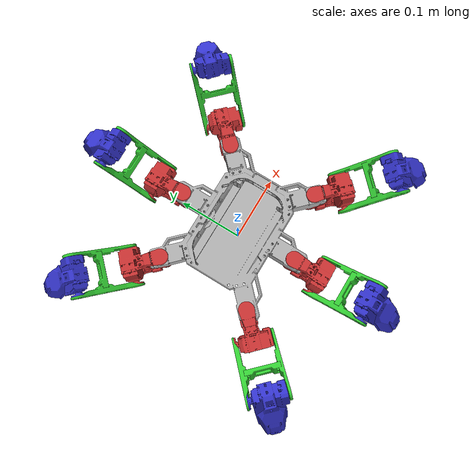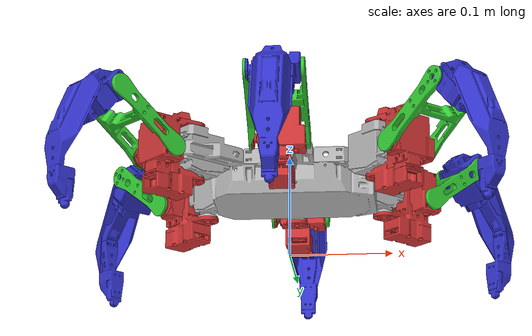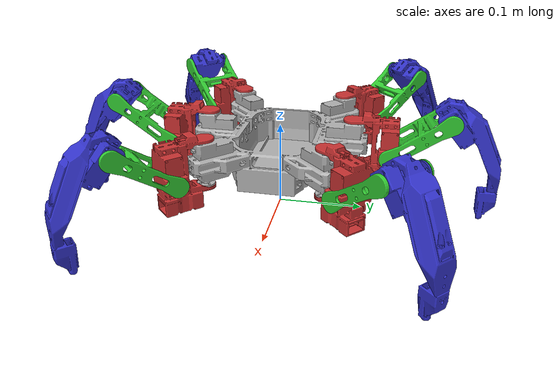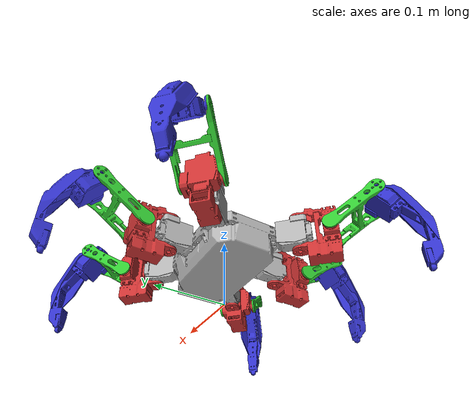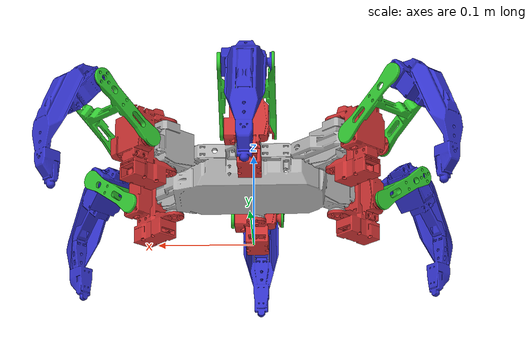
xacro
<?xml version="1.0" ?>
<robot name="diddler" xmlns:xacro="http://www.ros.org/wiki/xacro">

  <!-- Measurements (meters) -->
  <xacro:property name="coxa_len" value="0.043"/>
  <xacro:property name="femur_len" value="0.060"/>
  <xacro:property name="tibia_len" value="0.104"/>
  <xacro:property name="L1_TO_R1" value="0.126"/>
  <xacro:property name="L1_TO_L3" value="0.167"/>
  <xacro:property name="L2_TO_R2" value="0.163"/>
  <xacro:property name="LEG_CONNECTION_Z" value="-0.007"/>

  <!-- Materials -->
  <material name="silver"><color rgba="0.7 0.7 0.7 1.0"/></material>
  <material name="red"><color rgba="0.8 0.2 0.2 1.0"/></material>
  <material name="green"><color rgba="0.2 0.8 0.2 1.0"/></material>
  <material name="blue"><color rgba="0.2 0.2 0.8 1.0"/></material>

  <!-- ==================== BASE ==================== -->
  <link name="base_link">
    <inertial>
      <origin xyz="0.003 0.0 0.082" rpy="0 0 0"/>
      <mass value="2.76"/>
      <inertia ixx="0.0104" iyy="0.0114" izz="0.0208" ixy="0" iyz="0" ixz="0"/>
    </inertial>
    <visual>
      <origin xyz="0 0 0" rpy="0 0 0"/>
      <geometry>
        <mesh filename="file:///home/daksh/spooder_ws/diddler/meshes/base_link.stl" scale="0.001 0.001 0.001"/>
      </geometry>
      <material name="silver"/>
    </visual>
    <collision>
      <geometry><box size="${L1_TO_L3} ${L2_TO_R2} 0.05"/></geometry>
    </collision>
  </link>

  <!-- ==================== LEG L1 (Left Front) ==================== -->
  <link name="cox_L1_1">
    <inertial>
      <origin xyz="-0.026 -0.027 0.022" rpy="0 0 0"/>
      <mass value="0.434"/>
      <inertia ixx="0.000242" iyy="0.00024" izz="0.000124" ixy="-1.3e-05" iyz="1e-05" ixz="1.2e-05"/>
    </inertial>
    <visual>
      <origin xyz="0.087783 0.066055 -0.0596" rpy="0 0 0"/>
      <geometry>
        <mesh filename="file:///home/daksh/spooder_ws/diddler/meshes/cox_L1_1.stl" scale="0.001 0.001 0.001"/>
      </geometry>
      <material name="red"/>
    </visual>
    <collision>
      <origin xyz="${coxa_len/2} 0 0"/>
      <geometry><box size="${coxa_len} 0.03 0.03"/></geometry>
    </collision>
  </link>

  <link name="femur_L1_1">
    <inertial>
      <origin xyz="-0.006 -0.042 0.024" rpy="0 0 0"/>
      <mass value="0.132"/>
      <inertia ixx="9.4e-05" iyy="9.2e-05" izz="0.000131" ixy="1.3e-05" iyz="2.4e-05" ixz="2.4e-05"/>
    </inertial>
    <visual>
      <origin xyz="0.136785 0.078571 -0.0781" rpy="0 0 0"/>
      <geometry>
        <mesh filename="file:///home/daksh/spooder_ws/diddler/meshes/femur_L1_1.stl" scale="0.001 0.001 0.001"/>
      </geometry>
      <material name="green"/>
    </visual>
    <collision>
      <origin xyz="${femur_len/2} 0 0" rpy="0 1.5708 0"/>
      <geometry><cylinder radius="0.015" length="${femur_len}"/></geometry>
    </collision>
  </link>

  <link name="tibia_L1_1">
    <inertial>
      <origin xyz="0.004 -0.033 -0.024" rpy="0 0 0"/>
      <mass value="0.495"/>
      <inertia ixx="0.000705" iyy="0.000714" izz="0.000267" ixy="-8.2e-05" iyz="-0.000196" ixz="-0.000204"/>
    </inertial>
    <visual>
      <origin xyz="0.183123 0.124909 -0.123986" rpy="0 0 0"/>
      <geometry>
        <mesh filename="file:///home/daksh/spooder_ws/diddler/meshes/tibia_L1_1.stl" scale="0.001 0.001 0.001"/>
      </geometry>
      <material name="blue"/>
    </visual>
    <collision>
      <origin xyz="0.183123 0.124909 -0.123986" rpy="0 0 0"/>
      <geometry>
        <mesh filename="file:///home/daksh/spooder_ws/diddler/meshes/tibia_L1_1.stl" scale="0.001 0.001 0.001"/>
      </geometry>
    </collision>
  </link>

  <!-- ==================== LEG L2 (Left Middle) ==================== -->
  <link name="cox_L2_1">
    <inertial>
      <origin xyz="0.0005 -0.037 0.022" rpy="0 0 0"/>
      <mass value="0.434"/>
      <inertia ixx="0.000254" iyy="0.000228" izz="0.000124" ixy="1e-06" iyz="1.6e-05" ixz="1e-06"/>
    </inertial>
    <visual>
      <origin xyz="-0.0002 0.0855 -0.0596" rpy="0 0 0"/>
      <geometry>
        <mesh filename="file:///home/daksh/spooder_ws/diddler/meshes/cox_L2_1.stl" scale="0.001 0.001 0.001"/>
      </geometry>
      <material name="red"/>
    </visual>
    <collision>
      <origin xyz="${coxa_len/2} 0 0"/>
      <geometry><box size="${coxa_len} 0.03 0.03"/></geometry>
    </collision>
  </link>

  <link name="femur_L2_1">
    <inertial>
      <origin xyz="0.025 -0.034 0.024" rpy="0 0 0"/>
      <mass value="0.132"/>
      <inertia ixx="8e-05" iyy="0.000106" izz="0.000131" ixy="1e-06" iyz="3.4e-05" ixz="-1e-06"/>
    </inertial>
    <visual>
      <origin xyz="0.0256 0.129 -0.0781" rpy="0 0 0"/>
      <geometry>
        <mesh filename="file:///home/daksh/spooder_ws/diddler/meshes/femur_L2_1.stl" scale="0.001 0.001 0.001"/>
      </geometry>
      <material name="green"/>
    </visual>
    <collision>
      <origin xyz="${femur_len/2} 0 0" rpy="0 1.5708 0"/>
      <geometry><cylinder radius="0.015" length="${femur_len}"/></geometry>
    </collision>
  </link>

  <link name="tibia_L2_1">
    <inertial>
      <origin xyz="0.026 -0.020 -0.024" rpy="0 0 0"/>
      <mass value="0.495"/>
      <inertia ixx="0.000791" iyy="0.000628" izz="0.000267" ixy="-5e-06" iyz="-0.000283" ixz="-6e-06"/>
    </inertial>
    <visual>
      <origin xyz="0.0256 0.194532 -0.123986" rpy="0 0 0"/>
      <geometry>
        <mesh filename="file:///home/daksh/spooder_ws/diddler/meshes/tibia_L2_1.stl" scale="0.001 0.001 0.001"/>
      </geometry>
      <material name="blue"/>
    </visual>
    <collision>
      <origin xyz="0.0256 0.194532 -0.123986" rpy="0 0 0"/>
      <geometry>
        <mesh filename="file:///home/daksh/spooder_ws/diddler/meshes/tibia_L2_1.stl" scale="0.001 0.001 0.001"/>
      </geometry>
    </collision>
  </link>

  <!-- ==================== LEG L3 (Left Rear) ==================== -->
  <link name="cox_L3_1">
    <inertial>
      <origin xyz="0.027 -0.026 0.022" rpy="0 0 0"/>
      <mass value="0.434"/>
      <inertia ixx="0.00024" iyy="0.000242" izz="0.000124" ixy="1.3e-05" iyz="1.2e-05" ixz="-1e-05"/>
    </inertial>
    <visual>
      <origin xyz="-0.088556 0.065282 -0.0596" rpy="0 0 0"/>
      <geometry>
        <mesh filename="file:///home/daksh/spooder_ws/diddler/meshes/cox_L3_1.stl" scale="0.001 0.001 0.001"/>
      </geometry>
      <material name="red"/>
    </visual>
    <collision>
      <origin xyz="${coxa_len/2} 0 0"/>
      <geometry><box size="${coxa_len} 0.03 0.03"/></geometry>
    </collision>
  </link>

  <link name="femur_L3_1">
    <inertial>
      <origin xyz="0.042 -0.006 0.024" rpy="0 0 0"/>
      <mass value="0.132"/>
      <inertia ixx="9.2e-05" iyy="9.4e-05" izz="0.000131" ixy="-1.3e-05" iyz="2.4e-05" ixz="-2.4e-05"/>
    </inertial>
    <visual>
      <origin xyz="-0.101072 0.114284 -0.0781" rpy="0 0 0"/>
      <geometry>
        <mesh filename="file:///home/daksh/spooder_ws/diddler/meshes/femur_L3_1.stl" scale="0.001 0.001 0.001"/>
      </geometry>
      <material name="green"/>
    </visual>
    <collision>
      <origin xyz="${femur_len/2} 0 0" rpy="0 1.5708 0"/>
      <geometry><cylinder radius="0.015" length="${femur_len}"/></geometry>
    </collision>
  </link>

  <link name="tibia_L3_1">
    <inertial>
      <origin xyz="0.033 0.004 -0.024" rpy="0 0 0"/>
      <mass value="0.495"/>
      <inertia ixx="0.000714" iyy="0.000705" izz="0.000267" ixy="8.2e-05" iyz="-0.000204" ixz="0.000196"/>
    </inertial>
    <visual>
      <origin xyz="-0.14741 0.160623 -0.123986" rpy="0 0 0"/>
      <geometry>
        <mesh filename="file:///home/daksh/spooder_ws/diddler/meshes/tibia_L3_1.stl" scale="0.001 0.001 0.001"/>
      </geometry>
      <material name="blue"/>
    </visual>
    <collision>
      <origin xyz="-0.14741 0.160623 -0.123986" rpy="0 0 0"/>
      <geometry>
        <mesh filename="file:///home/daksh/spooder_ws/diddler/meshes/tibia_L3_1.stl" scale="0.001 0.001 0.001"/>
      </geometry>
    </collision>
  </link>

  <!-- ==================== LEG R1 (Right Front) ==================== -->
  <link name="cox_R1_1">
    <inertial>
      <origin xyz="-0.026 0.027 0.022" rpy="0 0 0"/>
      <mass value="0.434"/>
      <inertia ixx="0.000242" iyy="0.00024" izz="0.000124" ixy="1.3e-05" iyz="-1e-05" ixz="1.2e-05"/>
    </inertial>
    <visual>
      <origin xyz="0.087783 -0.066055 -0.0596" rpy="0 0 0"/>
      <geometry>
        <mesh filename="file:///home/daksh/spooder_ws/diddler/meshes/cox_R1_1.stl" scale="0.001 0.001 0.001"/>
      </geometry>
      <material name="red"/>
    </visual>
    <collision>
      <origin xyz="${coxa_len/2} 0 0"/>
      <geometry><box size="${coxa_len} 0.03 0.03"/></geometry>
    </collision>
  </link>

  <link name="femur_R1_1">
    <inertial>
      <origin xyz="-0.006 0.042 0.024" rpy="0 0 0"/>
      <mass value="0.132"/>
      <inertia ixx="9.4e-05" iyy="9.2e-05" izz="0.000131" ixy="-1.3e-05" iyz="-2.4e-05" ixz="2.4e-05"/>
    </inertial>
    <visual>
      <origin xyz="0.136785 -0.078571 -0.0781" rpy="0 0 0"/>
      <geometry>
        <mesh filename="file:///home/daksh/spooder_ws/diddler/meshes/femur_R1_1.stl" scale="0.001 0.001 0.001"/>
      </geometry>
      <material name="green"/>
    </visual>
    <collision>
      <origin xyz="${femur_len/2} 0 0" rpy="0 1.5708 0"/>
      <geometry><cylinder radius="0.015" length="${femur_len}"/></geometry>
    </collision>
  </link>

  <link name="tibia_R1_1">
    <inertial>
      <origin xyz="0.004 0.033 -0.024" rpy="0 0 0"/>
      <mass value="0.495"/>
      <inertia ixx="0.000705" iyy="0.000714" izz="0.000267" ixy="8.2e-05" iyz="0.000196" ixz="-0.000204"/>
    </inertial>
    <visual>
      <origin xyz="0.183123 -0.124909 -0.123986" rpy="0 0 0"/>
      <geometry>
        <mesh filename="file:///home/daksh/spooder_ws/diddler/meshes/tibia_R1_1.stl" scale="0.001 0.001 0.001"/>
      </geometry>
      <material name="blue"/>
    </visual>
    <collision>
      <origin xyz="0.183123 -0.124909 -0.123986" rpy="0 0 0"/>
      <geometry>
        <mesh filename="file:///home/daksh/spooder_ws/diddler/meshes/tibia_R1_1.stl" scale="0.001 0.001 0.001"/>
      </geometry>
    </collision>
  </link>

  <!-- ==================== LEG R2 (Right Middle) ==================== -->
  <link name="cox_R2_1">
    <inertial>
      <origin xyz="0.0005 0.037 0.022" rpy="0 0 0"/>
      <mass value="0.434"/>
      <inertia ixx="0.000254" iyy="0.000228" izz="0.000124" ixy="-1e-06" iyz="-1.6e-05" ixz="1e-06"/>
    </inertial>
    <visual>
      <origin xyz="-0.0002 -0.0855 -0.0596" rpy="0 0 0"/>
      <geometry>
        <mesh filename="file:///home/daksh/spooder_ws/diddler/meshes/cox_R2_1.stl" scale="0.001 0.001 0.001"/>
      </geometry>
      <material name="red"/>
    </visual>
    <collision>
      <origin xyz="${coxa_len/2} 0 0"/>
      <geometry><box size="${coxa_len} 0.03 0.03"/></geometry>
    </collision>
  </link>

  <link name="femur_R2_1">
    <inertial>
      <origin xyz="0.025 0.034 0.024" rpy="0 0 0"/>
      <mass value="0.132"/>
      <inertia ixx="8e-05" iyy="0.000106" izz="0.000131" ixy="-1e-06" iyz="-3.4e-05" ixz="-1e-06"/>
    </inertial>
    <visual>
      <origin xyz="0.0256 -0.129 -0.0781" rpy="0 0 0"/>
      <geometry>
        <mesh filename="file:///home/daksh/spooder_ws/diddler/meshes/femur_R2_1.stl" scale="0.001 0.001 0.001"/>
      </geometry>
      <material name="green"/>
    </visual>
    <collision>
      <origin xyz="${femur_len/2} 0 0" rpy="0 1.5708 0"/>
      <geometry><cylinder radius="0.015" length="${femur_len}"/></geometry>
    </collision>
  </link>

  <link name="tibia_R2_1">
    <inertial>
      <origin xyz="0.026 0.020 -0.024" rpy="0 0 0"/>
      <mass value="0.495"/>
      <inertia ixx="0.000791" iyy="0.000628" izz="0.000267" ixy="5e-06" iyz="0.000283" ixz="-6e-06"/>
    </inertial>
    <visual>
      <origin xyz="0.0256 -0.194532 -0.123986" rpy="0 0 0"/>
      <geometry>
        <mesh filename="file:///home/daksh/spooder_ws/diddler/meshes/tibia_R2_1.stl" scale="0.001 0.001 0.001"/>
      </geometry>
      <material name="blue"/>
    </visual>
    <collision>
      <origin xyz="0.0256 -0.194532 -0.123986" rpy="0 0 0"/>
      <geometry>
        <mesh filename="file:///home/daksh/spooder_ws/diddler/meshes/tibia_R2_1.stl" scale="0.001 0.001 0.001"/>
      </geometry>
    </collision>
  </link>

  <!-- ==================== LEG R3 (Right Rear) ==================== -->
  <link name="cox_R3_1">
    <inertial>
      <origin xyz="0.027 0.026 0.022" rpy="0 0 0"/>
      <mass value="0.434"/>
      <inertia ixx="0.00024" iyy="0.000242" izz="0.000124" ixy="-1.3e-05" iyz="-1.2e-05" ixz="-1e-05"/>
    </inertial>
    <visual>
      <origin xyz="-0.088556 -0.065282 -0.0596" rpy="0 0 0"/>
      <geometry>
        <mesh filename="file:///home/daksh/spooder_ws/diddler/meshes/cox_R3_1.stl" scale="0.001 0.001 0.001"/>
      </geometry>
      <material name="red"/>
    </visual>
    <collision>
      <origin xyz="${coxa_len/2} 0 0"/>
      <geometry><box size="${coxa_len} 0.03 0.03"/></geometry>
    </collision>
  </link>

  <link name="femur_R3_1">
    <inertial>
      <origin xyz="0.042 0.006 0.024" rpy="0 0 0"/>
      <mass value="0.132"/>
      <inertia ixx="9.2e-05" iyy="9.4e-05" izz="0.000131" ixy="1.3e-05" iyz="-2.4e-05" ixz="-2.4e-05"/>
    </inertial>
    <visual>
      <origin xyz="-0.101072 -0.114284 -0.0781" rpy="0 0 0"/>
      <geometry>
        <mesh filename="file:///home/daksh/spooder_ws/diddler/meshes/femur_R3_1.stl" scale="0.001 0.001 0.001"/>
      </geometry>
      <material name="green"/>
    </visual>
    <collision>
      <origin xyz="${femur_len/2} 0 0" rpy="0 1.5708 0"/>
      <geometry><cylinder radius="0.015" length="${femur_len}"/></geometry>
    </collision>
  </link>

  <link name="tibia_R3_1">
    <inertial>
      <origin xyz="0.033 -0.004 -0.024" rpy="0 0 0"/>
      <mass value="0.495"/>
      <inertia ixx="0.000714" iyy="0.000705" izz="0.000267" ixy="-8.2e-05" iyz="0.000204" ixz="0.000196"/>
    </inertial>
    <visual>
      <origin xyz="-0.14741 -0.160623 -0.123986" rpy="0 0 0"/>
      <geometry>
        <mesh filename="file:///home/daksh/spooder_ws/diddler/meshes/tibia_R3_1.stl" scale="0.001 0.001 0.001"/>
      </geometry>
      <material name="blue"/>
    </visual>
    <collision>
      <origin xyz="-0.14741 -0.160623 -0.123986" rpy="0 0 0"/>
      <geometry>
        <mesh filename="file:///home/daksh/spooder_ws/diddler/meshes/tibia_R3_1.stl" scale="0.001 0.001 0.001"/>
      </geometry>
    </collision>
  </link>

  <!-- ==================== JOINTS ==================== -->
  <!-- L1 (Left Front) -->
  <joint name="R31" type="revolute">
    <origin xyz="-0.087783 -0.066055 0.0596" rpy="0 0 0"/>
    <parent link="base_link"/>
    <child link="cox_L1_1"/>
    <axis xyz="0.0 0.0 -1.0"/>
    <limit upper="1" lower="-1" effort="100" velocity="100"/>
  </joint>
  <joint name="R32" type="revolute">
    <origin xyz="-0.049002 -0.012516 0.0185" rpy="0 0 0"/>
    <parent link="cox_L1_1"/>
    <child link="femur_L1_1"/>
    <axis xyz="-0.707107 0.707107 0.0"/>
    <limit upper="0.8" lower="-0.8" effort="100" velocity="100"/>
  </joint>
  <joint name="R33" type="revolute">
    <origin xyz="-0.046338 -0.046338 0.045886" rpy="0 0 0"/>
    <parent link="femur_L1_1"/>
    <child link="tibia_L1_1"/>
    <axis xyz="0.707107 -0.707107 0.0"/>
    <limit upper="0.7" lower="-1.570796" effort="100" velocity="100"/>
  </joint>

  <!-- L2 (Left Middle) -->
  <joint name="R21" type="revolute">
    <origin xyz="0.0002 -0.0855 0.0596" rpy="0 0 0"/>
    <parent link="base_link"/>
    <child link="cox_L2_1"/>
    <axis xyz="0.0 0.0 -1.0"/>
    <limit upper="1" lower="-1" effort="100" velocity="100"/>
  </joint>
  <joint name="R22" type="revolute">
    <origin xyz="-0.0258 -0.0435 0.0185" rpy="0 0 0"/>
    <parent link="cox_L2_1"/>
    <child link="femur_L2_1"/>
    <axis xyz="-1.0 0.0 0.0"/>
    <limit upper="0.8" lower="-0.8" effort="100" velocity="100"/>
  </joint>
  <joint name="R23" type="revolute">
    <origin xyz="0.0 -0.065532 0.045886" rpy="0 0 0"/>
    <parent link="femur_L2_1"/>
    <child link="tibia_L2_1"/>
    <axis xyz="1.0 0.0 0.0"/>
    <limit upper="0.7" lower="-1.570796" effort="100" velocity="100"/>
  </joint>

  <!-- L3 (Left Rear) -->
  <joint name="R11" type="revolute">
    <origin xyz="0.088556 -0.065282 0.0596" rpy="0 0 0"/>
    <parent link="base_link"/>
    <child link="cox_L3_1"/>
    <axis xyz="0.0 0.0 -1.0"/>
    <limit upper="1" lower="-1" effort="100" velocity="100"/>
  </joint>
  <joint name="R12" type="revolute">
    <origin xyz="0.012516 -0.049002 0.0185" rpy="0 0 0"/>
    <parent link="cox_L3_1"/>
    <child link="femur_L3_1"/>
    <axis xyz="-0.707107 -0.707107 0.0"/>
    <limit upper="0.8" lower="-0.8" effort="100" velocity="100"/>
  </joint>
  <joint name="R13" type="revolute">
    <origin xyz="0.046338 -0.046339 0.045886" rpy="0 0 0"/>
    <parent link="femur_L3_1"/>
    <child link="tibia_L3_1"/>
    <axis xyz="0.707107 0.707107 0.0"/>
    <limit upper="0.7" lower="-1.570796" effort="100" velocity="100"/>
  </joint>

  <!-- R1 (Right Front) -->
  <joint name="L31" type="revolute">
    <origin xyz="-0.087783 0.066055 0.0596" rpy="0 0 0"/>
    <parent link="base_link"/>
    <child link="cox_R1_1"/>
    <axis xyz="0.0 0.0 -1.0"/>
    <limit upper="1" lower="-1" effort="100" velocity="100"/>
  </joint>
  <joint name="L32" type="revolute">
    <origin xyz="-0.049002 0.012516 0.0185" rpy="0 0 0"/>
    <parent link="cox_R1_1"/>
    <child link="femur_R1_1"/>
    <axis xyz="0.707107 0.707107 0.0"/>
    <limit upper="0.8" lower="-0.8" effort="100" velocity="100"/>
  </joint>
  <joint name="L33" type="revolute">
    <origin xyz="-0.046338 0.046338 0.045886" rpy="0 0 0"/>
    <parent link="femur_R1_1"/>
    <child link="tibia_R1_1"/>
    <axis xyz="-0.707107 -0.707107 0.0"/>
    <limit upper="0.7" lower="-1.570796" effort="100" velocity="100"/>
  </joint>

  <!-- R2 (Right Middle) -->
  <joint name="L21" type="revolute">
    <origin xyz="0.0002 0.0855 0.0596" rpy="0 0 0"/>
    <parent link="base_link"/>
    <child link="cox_R2_1"/>
    <axis xyz="0.0 0.0 -1.0"/>
    <limit upper="1" lower="-1" effort="100" velocity="100"/>
  </joint>
  <joint name="L22" type="revolute">
    <origin xyz="-0.0258 0.0435 0.0185" rpy="0 0 0"/>
    <parent link="cox_R2_1"/>
    <child link="femur_R2_1"/>
    <axis xyz="1.0 0.0 0.0"/>
    <limit upper="0.8" lower="-0.8" effort="100" velocity="100"/>
  </joint>
  <joint name="L23" type="revolute">
    <origin xyz="0.0 0.065532 0.045886" rpy="0 0 0"/>
    <parent link="femur_R2_1"/>
    <child link="tibia_R2_1"/>
    <axis xyz="-1.0 0.0 0.0"/>
    <limit upper="0.7" lower="-1.570796" effort="100" velocity="100"/>
  </joint>

  <!-- R3 (Right Rear) -->
  <joint name="L11" type="revolute">
    <origin xyz="0.088556 0.065282 0.0596" rpy="0 0 0"/>
    <parent link="base_link"/>
    <child link="cox_R3_1"/>
    <axis xyz="0.0 0.0 -1.0"/>
    <limit upper="1" lower="-1" effort="100" velocity="100"/>
  </joint>
  <joint name="L12" type="revolute">
    <origin xyz="0.012516 0.049002 0.0185" rpy="0 0 0"/>
    <parent link="cox_R3_1"/>
    <child link="femur_R3_1"/>
    <axis xyz="0.707107 -0.707107 0.0"/>
    <limit upper="0.8" lower="-0.8" effort="100" velocity="100"/>
  </joint>
  <joint name="L13" type="revolute">
    <origin xyz="0.046338 0.046339 0.045886" rpy="0 0 0"/>
    <parent link="femur_R3_1"/>
    <child link="tibia_R3_1"/>
    <axis xyz="-0.707107 0.707107 0.0"/>
    <limit upper="0.7" lower="-1.570796" effort="100" velocity="100"/>
  </joint>

</robot>
